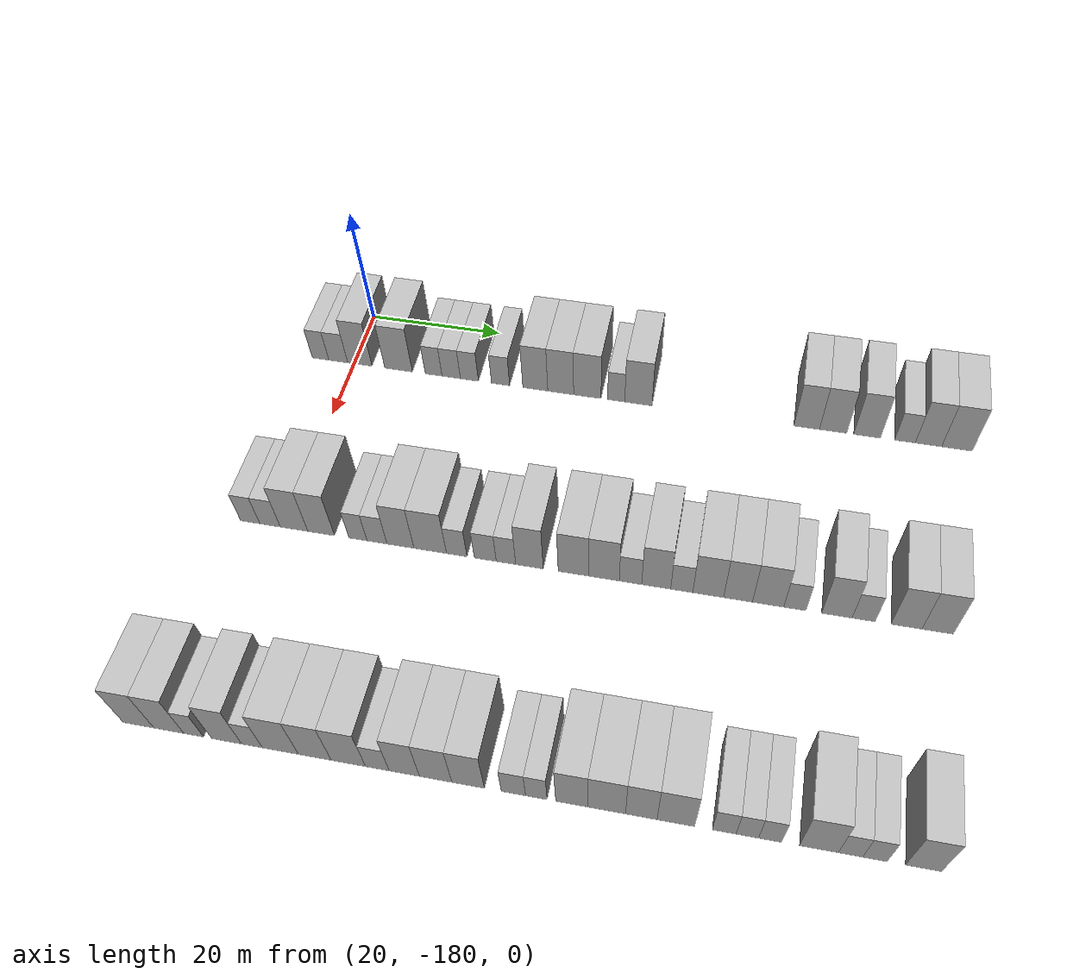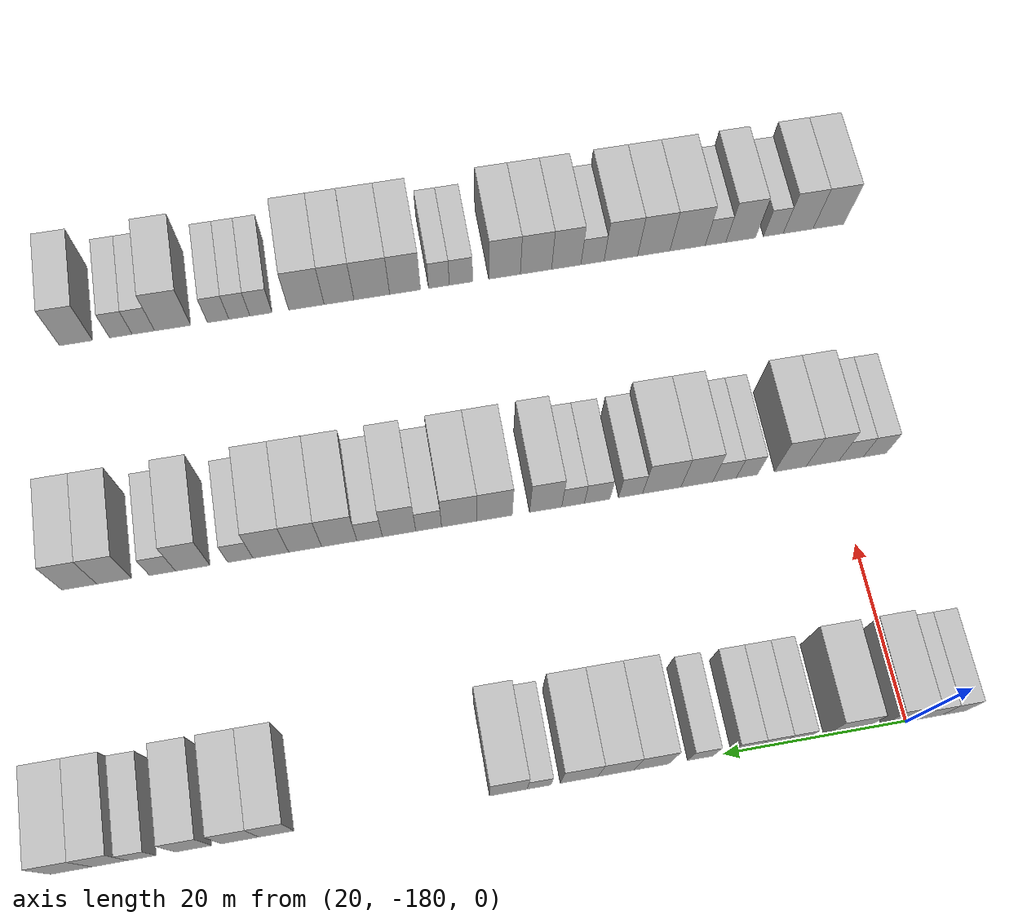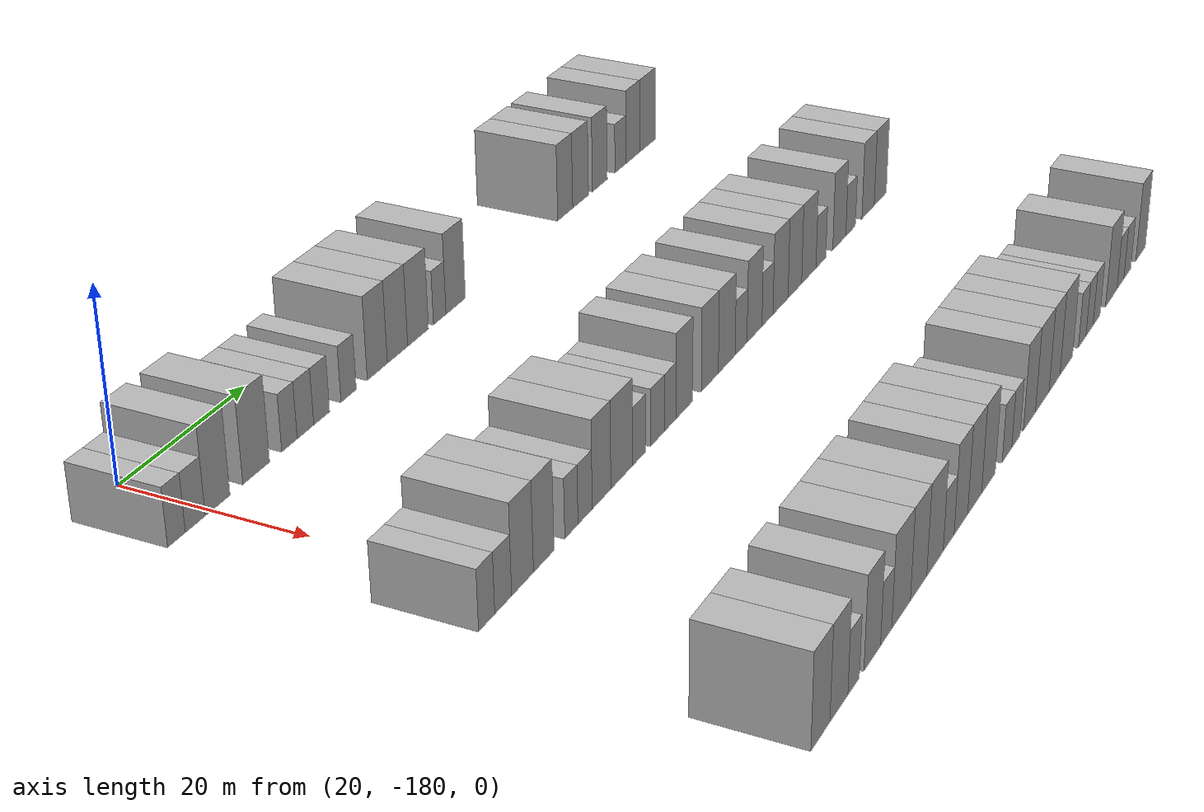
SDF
<sdf version="1.6">
 <world name="default">
  <model name="building_22">
   <static>1</static>
   <pose>25.0000 -185.2902 0 0.000000 0.000000 0.000000</pose>
   <link name="link">
    <pose>0 0 3.00 0 0 0</pose>
    <collision name="collision"><geometry><box><size>10.0000 2.6028 6.0000</size></box></geometry></collision>
    <visual name="visual">
     <cast_shadows>0</cast_shadows>
     <geometry><box><size>10.0000 2.6028 6.0000</size></box></geometry>
     <material>
      <script>
       <uri>model://HANNAS_wall/materials/scripts</uri>
       <uri>model://HANNAS_wall/materials/textures</uri>
       <name>vrc/HANNAS_wall</name>
      </script>
     </material>
    </visual>
   </link>
  </model>
  <model name="building_23">
   <static>1</static>
   <pose>25.0000 -182.5065 0 0.000000 0.000000 0.000000</pose>
   <link name="link">
    <pose>0 0 3.00 0 0 0</pose>
    <collision name="collision"><geometry><box><size>10.0000 2.9645 6.0000</size></box></geometry></collision>
    <visual name="visual">
     <cast_shadows>0</cast_shadows>
     <geometry><box><size>10.0000 2.9645 6.0000</size></box></geometry>
     <material>
      <script>
       <uri>model://HANNAS_wall/materials/scripts</uri>
       <uri>model://HANNAS_wall/materials/textures</uri>
       <name>vrc/HANNAS_wall</name>
      </script>
     </material>
    </visual>
   </link>
  </model>
  <model name="building_24">
   <static>1</static>
   <pose>25.0000 -179.1272 0 0.000000 0.000000 0.000000</pose>
   <link name="link">
    <pose>0 0 4.50 0 0 0</pose>
    <collision name="collision"><geometry><box><size>10.0000 3.7940 9.0000</size></box></geometry></collision>
    <visual name="visual">
     <cast_shadows>0</cast_shadows>
     <geometry><box><size>10.0000 3.7940 9.0000</size></box></geometry>
     <material>
      <script>
       <uri>model://HANNAS_wall/materials/scripts</uri>
       <uri>model://HANNAS_wall/materials/textures</uri>
       <name>vrc/HANNAS_wall</name>
      </script>
     </material>
    </visual>
   </link>
  </model>
  <model name="building_25">
   <static>1</static>
   <pose>25.0000 -173.0870 0 0.000000 0.000000 0.000000</pose>
   <link name="link">
    <pose>0 0 4.50 0 0 0</pose>
    <collision name="collision"><geometry><box><size>10.0000 4.2864 9.0000</size></box></geometry></collision>
    <visual name="visual">
     <cast_shadows>0</cast_shadows>
     <geometry><box><size>10.0000 4.2864 9.0000</size></box></geometry>
     <material>
      <script>
       <uri>model://HANNAS_wall/materials/scripts</uri>
       <uri>model://HANNAS_wall/materials/textures</uri>
       <name>vrc/HANNAS_wall</name>
      </script>
     </material>
    </visual>
   </link>
  </model>
  <model name="building_26">
   <static>1</static>
   <pose>25.0000 -167.6536 0 0.000000 0.000000 0.000000</pose>
   <link name="link">
    <pose>0 0 3.00 0 0 0</pose>
    <collision name="collision"><geometry><box><size>10.0000 2.5802 6.0000</size></box></geometry></collision>
    <visual name="visual">
     <cast_shadows>0</cast_shadows>
     <geometry><box><size>10.0000 2.5802 6.0000</size></box></geometry>
     <material>
      <script>
       <uri>model://HANNAS_wall/materials/scripts</uri>
       <uri>model://HANNAS_wall/materials/textures</uri>
       <name>vrc/HANNAS_wall</name>
      </script>
     </material>
    </visual>
   </link>
  </model>
  <model name="building_27">
   <static>1</static>
   <pose>25.0000 -164.9563 0 0.000000 0.000000 0.000000</pose>
   <link name="link">
    <pose>0 0 3.00 0 0 0</pose>
    <collision name="collision"><geometry><box><size>10.0000 2.8145 6.0000</size></box></geometry></collision>
    <visual name="visual">
     <cast_shadows>0</cast_shadows>
     <geometry><box><size>10.0000 2.8145 6.0000</size></box></geometry>
     <material>
      <script>
       <uri>model://HANNAS_wall/materials/scripts</uri>
       <uri>model://HANNAS_wall/materials/textures</uri>
       <name>vrc/HANNAS_wall</name>
      </script>
     </material>
    </visual>
   </link>
  </model>
  <model name="building_28">
   <static>1</static>
   <pose>25.0000 -162.1720 0 0.000000 0.000000 0.000000</pose>
   <link name="link">
    <pose>0 0 3.00 0 0 0</pose>
    <collision name="collision"><geometry><box><size>10.0000 2.7541 6.0000</size></box></geometry></collision>
    <visual name="visual">
     <cast_shadows>0</cast_shadows>
     <geometry><box><size>10.0000 2.7541 6.0000</size></box></geometry>
     <material>
      <script>
       <uri>model://HANNAS_wall/materials/scripts</uri>
       <uri>model://HANNAS_wall/materials/textures</uri>
       <name>vrc/HANNAS_wall</name>
      </script>
     </material>
    </visual>
   </link>
  </model>
  <model name="building_29">
   <static>1</static>
   <pose>25.0000 -157.4146 0 0.000000 0.000000 0.000000</pose>
   <link name="link">
    <pose>0 0 3.00 0 0 0</pose>
    <collision name="collision"><geometry><box><size>10.0000 2.7607 6.0000</size></box></geometry></collision>
    <visual name="visual">
     <cast_shadows>0</cast_shadows>
     <geometry><box><size>10.0000 2.7607 6.0000</size></box></geometry>
     <material>
      <script>
       <uri>model://HANNAS_wall/materials/scripts</uri>
       <uri>model://HANNAS_wall/materials/textures</uri>
       <name>vrc/HANNAS_wall</name>
      </script>
     </material>
    </visual>
   </link>
  </model>
  <model name="building_30">
   <static>1</static>
   <pose>25.0000 -152.1574 0 0.000000 0.000000 0.000000</pose>
   <link name="link">
    <pose>0 0 4.50 0 0 0</pose>
    <collision name="collision"><geometry><box><size>10.0000 3.7537 9.0000</size></box></geometry></collision>
    <visual name="visual">
     <cast_shadows>0</cast_shadows>
     <geometry><box><size>10.0000 3.7537 9.0000</size></box></geometry>
     <material>
      <script>
       <uri>model://HANNAS_wall/materials/scripts</uri>
       <uri>model://HANNAS_wall/materials/textures</uri>
       <name>vrc/HANNAS_wall</name>
      </script>
     </material>
    </visual>
   </link>
  </model>
  <model name="building_31">
   <static>1</static>
   <pose>25.0000 -148.3324 0 0.000000 0.000000 0.000000</pose>
   <link name="link">
    <pose>0 0 4.50 0 0 0</pose>
    <collision name="collision"><geometry><box><size>10.0000 3.8961 9.0000</size></box></geometry></collision>
    <visual name="visual">
     <cast_shadows>0</cast_shadows>
     <geometry><box><size>10.0000 3.8961 9.0000</size></box></geometry>
     <material>
      <script>
       <uri>model://HANNAS_wall/materials/scripts</uri>
       <uri>model://HANNAS_wall/materials/textures</uri>
       <name>vrc/HANNAS_wall</name>
      </script>
     </material>
    </visual>
   </link>
  </model>
  <model name="building_32">
   <static>1</static>
   <pose>25.0000 -144.3460 0 0.000000 0.000000 0.000000</pose>
   <link name="link">
    <pose>0 0 4.50 0 0 0</pose>
    <collision name="collision"><geometry><box><size>10.0000 4.0767 9.0000</size></box></geometry></collision>
    <visual name="visual">
     <cast_shadows>0</cast_shadows>
     <geometry><box><size>10.0000 4.0767 9.0000</size></box></geometry>
     <material>
      <script>
       <uri>model://HANNAS_wall/materials/scripts</uri>
       <uri>model://HANNAS_wall/materials/textures</uri>
       <name>vrc/HANNAS_wall</name>
      </script>
     </material>
    </visual>
   </link>
  </model>
  <model name="building_33">
   <static>1</static>
   <pose>25.0000 -140.0438 0 0.000000 0.000000 0.000000</pose>
   <link name="link">
    <pose>0 0 3.00 0 0 0</pose>
    <collision name="collision"><geometry><box><size>10.0000 2.5278 6.0000</size></box></geometry></collision>
    <visual name="visual">
     <cast_shadows>0</cast_shadows>
     <geometry><box><size>10.0000 2.5278 6.0000</size></box></geometry>
     <material>
      <script>
       <uri>model://HANNAS_wall/materials/scripts</uri>
       <uri>model://HANNAS_wall/materials/textures</uri>
       <name>vrc/HANNAS_wall</name>
      </script>
     </material>
    </visual>
   </link>
  </model>
  <model name="building_34">
   <static>1</static>
   <pose>25.0000 -136.7617 0 0.000000 0.000000 0.000000</pose>
   <link name="link">
    <pose>0 0 4.50 0 0 0</pose>
    <collision name="collision"><geometry><box><size>10.0000 4.0363 9.0000</size></box></geometry></collision>
    <visual name="visual">
     <cast_shadows>0</cast_shadows>
     <geometry><box><size>10.0000 4.0363 9.0000</size></box></geometry>
     <material>
      <script>
       <uri>model://HANNAS_wall/materials/scripts</uri>
       <uri>model://HANNAS_wall/materials/textures</uri>
       <name>vrc/HANNAS_wall</name>
      </script>
     </material>
    </visual>
   </link>
  </model>
  <model name="building_35">
   <static>1</static>
   <pose>25.0000 -112.2739 0 0.000000 0.000000 0.000000</pose>
   <link name="link">
    <pose>0 0 4.50 0 0 0</pose>
    <collision name="collision"><geometry><box><size>10.0000 3.6465 9.0000</size></box></geometry></collision>
    <visual name="visual">
     <cast_shadows>0</cast_shadows>
     <geometry><box><size>10.0000 3.6465 9.0000</size></box></geometry>
     <material>
      <script>
       <uri>model://HANNAS_wall/materials/scripts</uri>
       <uri>model://HANNAS_wall/materials/textures</uri>
       <name>vrc/HANNAS_wall</name>
      </script>
     </material>
    </visual>
   </link>
  </model>
  <model name="building_36">
   <static>1</static>
   <pose>25.0000 -108.5048 0 0.000000 0.000000 0.000000</pose>
   <link name="link">
    <pose>0 0 4.50 0 0 0</pose>
    <collision name="collision"><geometry><box><size>10.0000 3.8917 9.0000</size></box></geometry></collision>
    <visual name="visual">
     <cast_shadows>0</cast_shadows>
     <geometry><box><size>10.0000 3.8917 9.0000</size></box></geometry>
     <material>
      <script>
       <uri>model://HANNAS_wall/materials/scripts</uri>
       <uri>model://HANNAS_wall/materials/textures</uri>
       <name>vrc/HANNAS_wall</name>
      </script>
     </material>
    </visual>
   </link>
  </model>
  <model name="building_37">
   <static>1</static>
   <pose>25.0000 -103.6698 0 0.000000 0.000000 0.000000</pose>
   <link name="link">
    <pose>0 0 4.50 0 0 0</pose>
    <collision name="collision"><geometry><box><size>10.0000 3.7782 9.0000</size></box></geometry></collision>
    <visual name="visual">
     <cast_shadows>0</cast_shadows>
     <geometry><box><size>10.0000 3.7782 9.0000</size></box></geometry>
     <material>
      <script>
       <uri>model://HANNAS_wall/materials/scripts</uri>
       <uri>model://HANNAS_wall/materials/textures</uri>
       <name>vrc/HANNAS_wall</name>
      </script>
     </material>
    </visual>
   </link>
  </model>
  <model name="building_38">
   <static>1</static>
   <pose>25.0000 -98.3376 0 0.000000 0.000000 0.000000</pose>
   <link name="link">
    <pose>0 0 3.00 0 0 0</pose>
    <collision name="collision"><geometry><box><size>10.0000 2.8864 6.0000</size></box></geometry></collision>
    <visual name="visual">
     <cast_shadows>0</cast_shadows>
     <geometry><box><size>10.0000 2.8864 6.0000</size></box></geometry>
     <material>
      <script>
       <uri>model://HANNAS_wall/materials/scripts</uri>
       <uri>model://HANNAS_wall/materials/textures</uri>
       <name>vrc/HANNAS_wall</name>
      </script>
     </material>
    </visual>
   </link>
  </model>
  <model name="building_39">
   <static>1</static>
   <pose>25.0000 -95.0456 0 0.000000 0.000000 0.000000</pose>
   <link name="link">
    <pose>0 0 4.50 0 0 0</pose>
    <collision name="collision"><geometry><box><size>10.0000 3.6974 9.0000</size></box></geometry></collision>
    <visual name="visual">
     <cast_shadows>0</cast_shadows>
     <geometry><box><size>10.0000 3.6974 9.0000</size></box></geometry>
     <material>
      <script>
       <uri>model://HANNAS_wall/materials/scripts</uri>
       <uri>model://HANNAS_wall/materials/textures</uri>
       <name>vrc/HANNAS_wall</name>
      </script>
     </material>
    </visual>
   </link>
  </model>
  <model name="building_40">
   <static>1</static>
   <pose>25.0000 -91.0666 0 0.000000 0.000000 0.000000</pose>
   <link name="link">
    <pose>0 0 4.50 0 0 0</pose>
    <collision name="collision"><geometry><box><size>10.0000 4.2606 9.0000</size></box></geometry></collision>
    <visual name="visual">
     <cast_shadows>0</cast_shadows>
     <geometry><box><size>10.0000 4.2606 9.0000</size></box></geometry>
     <material>
      <script>
       <uri>model://HANNAS_wall/materials/scripts</uri>
       <uri>model://HANNAS_wall/materials/textures</uri>
       <name>vrc/HANNAS_wall</name>
      </script>
     </material>
    </visual>
   </link>
  </model>
  <model name="building_153">
   <static>1</static>
   <pose>55.0000 -185.0260 0 0.000000 0.000000 0.000000</pose>
   <link name="link">
    <pose>0 0 3.00 0 0 0</pose>
    <collision name="collision"><geometry><box><size>10.0000 2.7230 6.0000</size></box></geometry></collision>
    <visual name="visual">
     <cast_shadows>0</cast_shadows>
     <geometry><box><size>10.0000 2.7230 6.0000</size></box></geometry>
     <material>
      <script>
       <uri>model://HANNAS_wall/materials/scripts</uri>
       <uri>model://HANNAS_wall/materials/textures</uri>
       <name>vrc/HANNAS_wall</name>
      </script>
     </material>
    </visual>
   </link>
  </model>
  <model name="building_154">
   <static>1</static>
   <pose>55.0000 -182.2113 0 0.000000 0.000000 0.000000</pose>
   <link name="link">
    <pose>0 0 3.00 0 0 0</pose>
    <collision name="collision"><geometry><box><size>10.0000 2.9064 6.0000</size></box></geometry></collision>
    <visual name="visual">
     <cast_shadows>0</cast_shadows>
     <geometry><box><size>10.0000 2.9064 6.0000</size></box></geometry>
     <material>
      <script>
       <uri>model://HANNAS_wall/materials/scripts</uri>
       <uri>model://HANNAS_wall/materials/textures</uri>
       <name>vrc/HANNAS_wall</name>
      </script>
     </material>
    </visual>
   </link>
  </model>
  <model name="building_155">
   <static>1</static>
   <pose>55.0000 -178.8246 0 0.000000 0.000000 0.000000</pose>
   <link name="link">
    <pose>0 0 4.50 0 0 0</pose>
    <collision name="collision"><geometry><box><size>10.0000 3.8669 9.0000</size></box></geometry></collision>
    <visual name="visual">
     <cast_shadows>0</cast_shadows>
     <geometry><box><size>10.0000 3.8669 9.0000</size></box></geometry>
     <material>
      <script>
       <uri>model://HANNAS_wall/materials/scripts</uri>
       <uri>model://HANNAS_wall/materials/textures</uri>
       <name>vrc/HANNAS_wall</name>
      </script>
     </material>
    </visual>
   </link>
  </model>
  <model name="building_156">
   <static>1</static>
   <pose>55.0000 -175.0192 0 0.000000 0.000000 0.000000</pose>
   <link name="link">
    <pose>0 0 4.50 0 0 0</pose>
    <collision name="collision"><geometry><box><size>10.0000 3.7440 9.0000</size></box></geometry></collision>
    <visual name="visual">
     <cast_shadows>0</cast_shadows>
     <geometry><box><size>10.0000 3.7440 9.0000</size></box></geometry>
     <material>
      <script>
       <uri>model://HANNAS_wall/materials/scripts</uri>
       <uri>model://HANNAS_wall/materials/textures</uri>
       <name>vrc/HANNAS_wall</name>
      </script>
     </material>
    </visual>
   </link>
  </model>
  <model name="building_157">
   <static>1</static>
   <pose>55.0000 -169.8911 0 0.000000 0.000000 0.000000</pose>
   <link name="link">
    <pose>0 0 3.00 0 0 0</pose>
    <collision name="collision"><geometry><box><size>10.0000 2.5122 6.0000</size></box></geometry></collision>
    <visual name="visual">
     <cast_shadows>0</cast_shadows>
     <geometry><box><size>10.0000 2.5122 6.0000</size></box></geometry>
     <material>
      <script>
       <uri>model://HANNAS_wall/materials/scripts</uri>
       <uri>model://HANNAS_wall/materials/textures</uri>
       <name>vrc/HANNAS_wall</name>
      </script>
     </material>
    </visual>
   </link>
  </model>
  <model name="building_158">
   <static>1</static>
   <pose>55.0000 -167.2529 0 0.000000 0.000000 0.000000</pose>
   <link name="link">
    <pose>0 0 3.00 0 0 0</pose>
    <collision name="collision"><geometry><box><size>10.0000 2.7641 6.0000</size></box></geometry></collision>
    <visual name="visual">
     <cast_shadows>0</cast_shadows>
     <geometry><box><size>10.0000 2.7641 6.0000</size></box></geometry>
     <material>
      <script>
       <uri>model://HANNAS_wall/materials/scripts</uri>
       <uri>model://HANNAS_wall/materials/textures</uri>
       <name>vrc/HANNAS_wall</name>
      </script>
     </material>
    </visual>
   </link>
  </model>
  <model name="building_159">
   <static>1</static>
   <pose>55.0000 -164.0190 0 0.000000 0.000000 0.000000</pose>
   <link name="link">
    <pose>0 0 4.50 0 0 0</pose>
    <collision name="collision"><geometry><box><size>10.0000 3.7036 9.0000</size></box></geometry></collision>
    <visual name="visual">
     <cast_shadows>0</cast_shadows>
     <geometry><box><size>10.0000 3.7036 9.0000</size></box></geometry>
     <material>
      <script>
       <uri>model://HANNAS_wall/materials/scripts</uri>
       <uri>model://HANNAS_wall/materials/textures</uri>
       <name>vrc/HANNAS_wall</name>
      </script>
     </material>
    </visual>
   </link>
  </model>
  <model name="building_160">
   <static>1</static>
   <pose>55.0000 -159.9328 0 0.000000 0.000000 0.000000</pose>
   <link name="link">
    <pose>0 0 4.50 0 0 0</pose>
    <collision name="collision"><geometry><box><size>10.0000 4.4688 9.0000</size></box></geometry></collision>
    <visual name="visual">
     <cast_shadows>0</cast_shadows>
     <geometry><box><size>10.0000 4.4688 9.0000</size></box></geometry>
     <material>
      <script>
       <uri>model://HANNAS_wall/materials/scripts</uri>
       <uri>model://HANNAS_wall/materials/textures</uri>
       <name>vrc/HANNAS_wall</name>
      </script>
     </material>
    </visual>
   </link>
  </model>
  <model name="building_161">
   <static>1</static>
   <pose>55.0000 -156.3038 0 0.000000 0.000000 0.000000</pose>
   <link name="link">
    <pose>0 0 3.00 0 0 0</pose>
    <collision name="collision"><geometry><box><size>10.0000 2.7891 6.0000</size></box></geometry></collision>
    <visual name="visual">
     <cast_shadows>0</cast_shadows>
     <geometry><box><size>10.0000 2.7891 6.0000</size></box></geometry>
     <material>
      <script>
       <uri>model://HANNAS_wall/materials/scripts</uri>
       <uri>model://HANNAS_wall/materials/textures</uri>
       <name>vrc/HANNAS_wall</name>
      </script>
     </material>
    </visual>
   </link>
  </model>
  <model name="building_162">
   <static>1</static>
   <pose>55.0000 -152.4334 0 0.000000 0.000000 0.000000</pose>
   <link name="link">
    <pose>0 0 3.00 0 0 0</pose>
    <collision name="collision"><geometry><box><size>10.0000 2.9518 6.0000</size></box></geometry></collision>
    <visual name="visual">
     <cast_shadows>0</cast_shadows>
     <geometry><box><size>10.0000 2.9518 6.0000</size></box></geometry>
     <material>
      <script>
       <uri>model://HANNAS_wall/materials/scripts</uri>
       <uri>model://HANNAS_wall/materials/textures</uri>
       <name>vrc/HANNAS_wall</name>
      </script>
     </material>
    </visual>
   </link>
  </model>
  <model name="building_163">
   <static>1</static>
   <pose>55.0000 -149.6436 0 0.000000 0.000000 0.000000</pose>
   <link name="link">
    <pose>0 0 3.00 0 0 0</pose>
    <collision name="collision"><geometry><box><size>10.0000 2.6277 6.0000</size></box></geometry></collision>
    <visual name="visual">
     <cast_shadows>0</cast_shadows>
     <geometry><box><size>10.0000 2.6277 6.0000</size></box></geometry>
     <material>
      <script>
       <uri>model://HANNAS_wall/materials/scripts</uri>
       <uri>model://HANNAS_wall/materials/textures</uri>
       <name>vrc/HANNAS_wall</name>
      </script>
     </material>
    </visual>
   </link>
  </model>
  <model name="building_164">
   <static>1</static>
   <pose>55.0000 -146.4800 0 0.000000 0.000000 0.000000</pose>
   <link name="link">
    <pose>0 0 4.50 0 0 0</pose>
    <collision name="collision"><geometry><box><size>10.0000 3.6996 9.0000</size></box></geometry></collision>
    <visual name="visual">
     <cast_shadows>0</cast_shadows>
     <geometry><box><size>10.0000 3.6996 9.0000</size></box></geometry>
     <material>
      <script>
       <uri>model://HANNAS_wall/materials/scripts</uri>
       <uri>model://HANNAS_wall/materials/textures</uri>
       <name>vrc/HANNAS_wall</name>
      </script>
     </material>
    </visual>
   </link>
  </model>
  <model name="building_165">
   <static>1</static>
   <pose>55.0000 -140.6184 0 0.000000 0.000000 0.000000</pose>
   <link name="link">
    <pose>0 0 4.50 0 0 0</pose>
    <collision name="collision"><geometry><box><size>10.0000 4.0236 9.0000</size></box></geometry></collision>
    <visual name="visual">
     <cast_shadows>0</cast_shadows>
     <geometry><box><size>10.0000 4.0236 9.0000</size></box></geometry>
     <material>
      <script>
       <uri>model://HANNAS_wall/materials/scripts</uri>
       <uri>model://HANNAS_wall/materials/textures</uri>
       <name>vrc/HANNAS_wall</name>
      </script>
     </material>
    </visual>
   </link>
  </model>
  <model name="building_166">
   <static>1</static>
   <pose>55.0000 -136.5712 0 0.000000 0.000000 0.000000</pose>
   <link name="link">
    <pose>0 0 4.50 0 0 0</pose>
    <collision name="collision"><geometry><box><size>10.0000 4.0707 9.0000</size></box></geometry></collision>
    <visual name="visual">
     <cast_shadows>0</cast_shadows>
     <geometry><box><size>10.0000 4.0707 9.0000</size></box></geometry>
     <material>
      <script>
       <uri>model://HANNAS_wall/materials/scripts</uri>
       <uri>model://HANNAS_wall/materials/textures</uri>
       <name>vrc/HANNAS_wall</name>
      </script>
     </material>
    </visual>
   </link>
  </model>
  <model name="building_167">
   <static>1</static>
   <pose>55.0000 -133.0677 0 0.000000 0.000000 0.000000</pose>
   <link name="link">
    <pose>0 0 3.00 0 0 0</pose>
    <collision name="collision"><geometry><box><size>10.0000 2.9363 6.0000</size></box></geometry></collision>
    <visual name="visual">
     <cast_shadows>0</cast_shadows>
     <geometry><box><size>10.0000 2.9363 6.0000</size></box></geometry>
     <material>
      <script>
       <uri>model://HANNAS_wall/materials/scripts</uri>
       <uri>model://HANNAS_wall/materials/textures</uri>
       <name>vrc/HANNAS_wall</name>
      </script>
     </material>
    </visual>
   </link>
  </model>
  <model name="building_168">
   <static>1</static>
   <pose>55.0000 -129.7004 0 0.000000 0.000000 0.000000</pose>
   <link name="link">
    <pose>0 0 4.50 0 0 0</pose>
    <collision name="collision"><geometry><box><size>10.0000 3.7983 9.0000</size></box></geometry></collision>
    <visual name="visual">
     <cast_shadows>0</cast_shadows>
     <geometry><box><size>10.0000 3.7983 9.0000</size></box></geometry>
     <material>
      <script>
       <uri>model://HANNAS_wall/materials/scripts</uri>
       <uri>model://HANNAS_wall/materials/textures</uri>
       <name>vrc/HANNAS_wall</name>
      </script>
     </material>
    </visual>
   </link>
  </model>
  <model name="building_169">
   <static>1</static>
   <pose>55.0000 -126.3628 0 0.000000 0.000000 0.000000</pose>
   <link name="link">
    <pose>0 0 3.00 0 0 0</pose>
    <collision name="collision"><geometry><box><size>10.0000 2.8771 6.0000</size></box></geometry></collision>
    <visual name="visual">
     <cast_shadows>0</cast_shadows>
     <geometry><box><size>10.0000 2.8771 6.0000</size></box></geometry>
     <material>
      <script>
       <uri>model://HANNAS_wall/materials/scripts</uri>
       <uri>model://HANNAS_wall/materials/textures</uri>
       <name>vrc/HANNAS_wall</name>
      </script>
     </material>
    </visual>
   </link>
  </model>
  <model name="building_170">
   <static>1</static>
   <pose>55.0000 -122.9276 0 0.000000 0.000000 0.000000</pose>
   <link name="link">
    <pose>0 0 4.50 0 0 0</pose>
    <collision name="collision"><geometry><box><size>10.0000 3.9932 9.0000</size></box></geometry></collision>
    <visual name="visual">
     <cast_shadows>0</cast_shadows>
     <geometry><box><size>10.0000 3.9932 9.0000</size></box></geometry>
     <material>
      <script>
       <uri>model://HANNAS_wall/materials/scripts</uri>
       <uri>model://HANNAS_wall/materials/textures</uri>
       <name>vrc/HANNAS_wall</name>
      </script>
     </material>
    </visual>
   </link>
  </model>
  <model name="building_171">
   <static>1</static>
   <pose>55.0000 -119.0752 0 0.000000 0.000000 0.000000</pose>
   <link name="link">
    <pose>0 0 4.50 0 0 0</pose>
    <collision name="collision"><geometry><box><size>10.0000 3.7115 9.0000</size></box></geometry></collision>
    <visual name="visual">
     <cast_shadows>0</cast_shadows>
     <geometry><box><size>10.0000 3.7115 9.0000</size></box></geometry>
     <material>
      <script>
       <uri>model://HANNAS_wall/materials/scripts</uri>
       <uri>model://HANNAS_wall/materials/textures</uri>
       <name>vrc/HANNAS_wall</name>
      </script>
     </material>
    </visual>
   </link>
  </model>
  <model name="building_172">
   <static>1</static>
   <pose>55.0000 -115.2113 0 0.000000 0.000000 0.000000</pose>
   <link name="link">
    <pose>0 0 4.50 0 0 0</pose>
    <collision name="collision"><geometry><box><size>10.0000 4.0164 9.0000</size></box></geometry></collision>
    <visual name="visual">
     <cast_shadows>0</cast_shadows>
     <geometry><box><size>10.0000 4.0164 9.0000</size></box></geometry>
     <material>
      <script>
       <uri>model://HANNAS_wall/materials/scripts</uri>
       <uri>model://HANNAS_wall/materials/textures</uri>
       <name>vrc/HANNAS_wall</name>
      </script>
     </material>
    </visual>
   </link>
  </model>
  <model name="building_173">
   <static>1</static>
   <pose>55.0000 -111.7916 0 0.000000 0.000000 0.000000</pose>
   <link name="link">
    <pose>0 0 3.00 0 0 0</pose>
    <collision name="collision"><geometry><box><size>10.0000 2.8229 6.0000</size></box></geometry></collision>
    <visual name="visual">
     <cast_shadows>0</cast_shadows>
     <geometry><box><size>10.0000 2.8229 6.0000</size></box></geometry>
     <material>
      <script>
       <uri>model://HANNAS_wall/materials/scripts</uri>
       <uri>model://HANNAS_wall/materials/textures</uri>
       <name>vrc/HANNAS_wall</name>
      </script>
     </material>
    </visual>
   </link>
  </model>
  <model name="building_174">
   <static>1</static>
   <pose>55.0000 -106.4571 0 0.000000 0.000000 0.000000</pose>
   <link name="link">
    <pose>0 0 4.50 0 0 0</pose>
    <collision name="collision"><geometry><box><size>10.0000 3.8460 9.0000</size></box></geometry></collision>
    <visual name="visual">
     <cast_shadows>0</cast_shadows>
     <geometry><box><size>10.0000 3.8460 9.0000</size></box></geometry>
     <material>
      <script>
       <uri>model://HANNAS_wall/materials/scripts</uri>
       <uri>model://HANNAS_wall/materials/textures</uri>
       <name>vrc/HANNAS_wall</name>
      </script>
     </material>
    </visual>
   </link>
  </model>
  <model name="building_175">
   <static>1</static>
   <pose>55.0000 -103.0831 0 0.000000 0.000000 0.000000</pose>
   <link name="link">
    <pose>0 0 3.00 0 0 0</pose>
    <collision name="collision"><geometry><box><size>10.0000 2.9020 6.0000</size></box></geometry></collision>
    <visual name="visual">
     <cast_shadows>0</cast_shadows>
     <geometry><box><size>10.0000 2.9020 6.0000</size></box></geometry>
     <material>
      <script>
       <uri>model://HANNAS_wall/materials/scripts</uri>
       <uri>model://HANNAS_wall/materials/textures</uri>
       <name>vrc/HANNAS_wall</name>
      </script>
     </material>
    </visual>
   </link>
  </model>
  <model name="building_176">
   <static>1</static>
   <pose>55.0000 -97.7161 0 0.000000 0.000000 0.000000</pose>
   <link name="link">
    <pose>0 0 4.50 0 0 0</pose>
    <collision name="collision"><geometry><box><size>10.0000 3.8321 9.0000</size></box></geometry></collision>
    <visual name="visual">
     <cast_shadows>0</cast_shadows>
     <geometry><box><size>10.0000 3.8321 9.0000</size></box></geometry>
     <material>
      <script>
       <uri>model://HANNAS_wall/materials/scripts</uri>
       <uri>model://HANNAS_wall/materials/textures</uri>
       <name>vrc/HANNAS_wall</name>
      </script>
     </material>
    </visual>
   </link>
  </model>
  <model name="building_177">
   <static>1</static>
   <pose>55.0000 -93.8595 0 0.000000 0.000000 0.000000</pose>
   <link name="link">
    <pose>0 0 4.50 0 0 0</pose>
    <collision name="collision"><geometry><box><size>10.0000 3.8812 9.0000</size></box></geometry></collision>
    <visual name="visual">
     <cast_shadows>0</cast_shadows>
     <geometry><box><size>10.0000 3.8812 9.0000</size></box></geometry>
     <material>
      <script>
       <uri>model://HANNAS_wall/materials/scripts</uri>
       <uri>model://HANNAS_wall/materials/textures</uri>
       <name>vrc/HANNAS_wall</name>
      </script>
     </material>
    </visual>
   </link>
  </model>
  <model name="building_292">
   <static>1</static>
   <pose>85.0000 -187.6111 0 0.000000 0.000000 0.000000</pose>
   <link name="link">
    <pose>0 0 4.50 0 0 0</pose>
    <collision name="collision"><geometry><box><size>10.0000 3.8960 9.0000</size></box></geometry></collision>
    <visual name="visual">
     <cast_shadows>0</cast_shadows>
     <geometry><box><size>10.0000 3.8960 9.0000</size></box></geometry>
     <material>
      <script>
       <uri>model://HANNAS_wall/materials/scripts</uri>
       <uri>model://HANNAS_wall/materials/textures</uri>
       <name>vrc/HANNAS_wall</name>
      </script>
     </material>
    </visual>
   </link>
  </model>
  <model name="building_293">
   <static>1</static>
   <pose>85.0000 -183.7734 0 0.000000 0.000000 0.000000</pose>
   <link name="link">
    <pose>0 0 4.50 0 0 0</pose>
    <collision name="collision"><geometry><box><size>10.0000 3.7795 9.0000</size></box></geometry></collision>
    <visual name="visual">
     <cast_shadows>0</cast_shadows>
     <geometry><box><size>10.0000 3.7795 9.0000</size></box></geometry>
     <material>
      <script>
       <uri>model://HANNAS_wall/materials/scripts</uri>
       <uri>model://HANNAS_wall/materials/textures</uri>
       <name>vrc/HANNAS_wall</name>
      </script>
     </material>
    </visual>
   </link>
  </model>
  <model name="building_294">
   <static>1</static>
   <pose>85.0000 -180.6366 0 0.000000 0.000000 0.000000</pose>
   <link name="link">
    <pose>0 0 3.00 0 0 0</pose>
    <collision name="collision"><geometry><box><size>10.0000 2.4941 6.0000</size></box></geometry></collision>
    <visual name="visual">
     <cast_shadows>0</cast_shadows>
     <geometry><box><size>10.0000 2.4941 6.0000</size></box></geometry>
     <material>
      <script>
       <uri>model://HANNAS_wall/materials/scripts</uri>
       <uri>model://HANNAS_wall/materials/textures</uri>
       <name>vrc/HANNAS_wall</name>
      </script>
     </material>
    </visual>
   </link>
  </model>
  <model name="building_295">
   <static>1</static>
   <pose>85.0000 -176.5212 0 0.000000 0.000000 0.000000</pose>
   <link name="link">
    <pose>0 0 4.50 0 0 0</pose>
    <collision name="collision"><geometry><box><size>10.0000 3.7368 9.0000</size></box></geometry></collision>
    <visual name="visual">
     <cast_shadows>0</cast_shadows>
     <geometry><box><size>10.0000 3.7368 9.0000</size></box></geometry>
     <material>
      <script>
       <uri>model://HANNAS_wall/materials/scripts</uri>
       <uri>model://HANNAS_wall/materials/textures</uri>
       <name>vrc/HANNAS_wall</name>
      </script>
     </material>
    </visual>
   </link>
  </model>
  <model name="building_296">
   <static>1</static>
   <pose>85.0000 -173.3648 0 0.000000 0.000000 0.000000</pose>
   <link name="link">
    <pose>0 0 3.00 0 0 0</pose>
    <collision name="collision"><geometry><box><size>10.0000 2.5761 6.0000</size></box></geometry></collision>
    <visual name="visual">
     <cast_shadows>0</cast_shadows>
     <geometry><box><size>10.0000 2.5761 6.0000</size></box></geometry>
     <material>
      <script>
       <uri>model://HANNAS_wall/materials/scripts</uri>
       <uri>model://HANNAS_wall/materials/textures</uri>
       <name>vrc/HANNAS_wall</name>
      </script>
     </material>
    </visual>
   </link>
  </model>
  <model name="building_297">
   <static>1</static>
   <pose>85.0000 -169.8605 0 0.000000 0.000000 0.000000</pose>
   <link name="link">
    <pose>0 0 4.50 0 0 0</pose>
    <collision name="collision"><geometry><box><size>10.0000 4.4325 9.0000</size></box></geometry></collision>
    <visual name="visual">
     <cast_shadows>0</cast_shadows>
     <geometry><box><size>10.0000 4.4325 9.0000</size></box></geometry>
     <material>
      <script>
       <uri>model://HANNAS_wall/materials/scripts</uri>
       <uri>model://HANNAS_wall/materials/textures</uri>
       <name>vrc/HANNAS_wall</name>
      </script>
     </material>
    </visual>
   </link>
  </model>
  <model name="building_298">
   <static>1</static>
   <pose>85.0000 -165.6308 0 0.000000 0.000000 0.000000</pose>
   <link name="link">
    <pose>0 0 4.50 0 0 0</pose>
    <collision name="collision"><geometry><box><size>10.0000 4.0267 9.0000</size></box></geometry></collision>
    <visual name="visual">
     <cast_shadows>0</cast_shadows>
     <geometry><box><size>10.0000 4.0267 9.0000</size></box></geometry>
     <material>
      <script>
       <uri>model://HANNAS_wall/materials/scripts</uri>
       <uri>model://HANNAS_wall/materials/textures</uri>
       <name>vrc/HANNAS_wall</name>
      </script>
     </material>
    </visual>
   </link>
  </model>
  <model name="building_299">
   <static>1</static>
   <pose>85.0000 -161.5288 0 0.000000 0.000000 0.000000</pose>
   <link name="link">
    <pose>0 0 4.50 0 0 0</pose>
    <collision name="collision"><geometry><box><size>10.0000 4.1773 9.0000</size></box></geometry></collision>
    <visual name="visual">
     <cast_shadows>0</cast_shadows>
     <geometry><box><size>10.0000 4.1773 9.0000</size></box></geometry>
     <material>
      <script>
       <uri>model://HANNAS_wall/materials/scripts</uri>
       <uri>model://HANNAS_wall/materials/textures</uri>
       <name>vrc/HANNAS_wall</name>
      </script>
     </material>
    </visual>
   </link>
  </model>
  <model name="building_300">
   <static>1</static>
   <pose>85.0000 -158.0082 0 0.000000 0.000000 0.000000</pose>
   <link name="link">
    <pose>0 0 3.00 0 0 0</pose>
    <collision name="collision"><geometry><box><size>10.0000 2.8640 6.0000</size></box></geometry></collision>
    <visual name="visual">
     <cast_shadows>0</cast_shadows>
     <geometry><box><size>10.0000 2.8640 6.0000</size></box></geometry>
     <material>
      <script>
       <uri>model://HANNAS_wall/materials/scripts</uri>
       <uri>model://HANNAS_wall/materials/textures</uri>
       <name>vrc/HANNAS_wall</name>
      </script>
     </material>
    </visual>
   </link>
  </model>
  <model name="building_301">
   <static>1</static>
   <pose>85.0000 -154.7605 0 0.000000 0.000000 0.000000</pose>
   <link name="link">
    <pose>0 0 4.50 0 0 0</pose>
    <collision name="collision"><geometry><box><size>10.0000 3.6315 9.0000</size></box></geometry></collision>
    <visual name="visual">
     <cast_shadows>0</cast_shadows>
     <geometry><box><size>10.0000 3.6315 9.0000</size></box></geometry>
     <material>
      <script>
       <uri>model://HANNAS_wall/materials/scripts</uri>
       <uri>model://HANNAS_wall/materials/textures</uri>
       <name>vrc/HANNAS_wall</name>
      </script>
     </material>
    </visual>
   </link>
  </model>
  <model name="building_302">
   <static>1</static>
   <pose>85.0000 -151.0167 0 0.000000 0.000000 0.000000</pose>
   <link name="link">
    <pose>0 0 4.50 0 0 0</pose>
    <collision name="collision"><geometry><box><size>10.0000 3.8560 9.0000</size></box></geometry></collision>
    <visual name="visual">
     <cast_shadows>0</cast_shadows>
     <geometry><box><size>10.0000 3.8560 9.0000</size></box></geometry>
     <material>
      <script>
       <uri>model://HANNAS_wall/materials/scripts</uri>
       <uri>model://HANNAS_wall/materials/textures</uri>
       <name>vrc/HANNAS_wall</name>
      </script>
     </material>
    </visual>
   </link>
  </model>
  <model name="building_303">
   <static>1</static>
   <pose>85.0000 -147.1509 0 0.000000 0.000000 0.000000</pose>
   <link name="link">
    <pose>0 0 4.50 0 0 0</pose>
    <collision name="collision"><geometry><box><size>10.0000 3.8756 9.0000</size></box></geometry></collision>
    <visual name="visual">
     <cast_shadows>0</cast_shadows>
     <geometry><box><size>10.0000 3.8756 9.0000</size></box></geometry>
     <material>
      <script>
       <uri>model://HANNAS_wall/materials/scripts</uri>
       <uri>model://HANNAS_wall/materials/textures</uri>
       <name>vrc/HANNAS_wall</name>
      </script>
     </material>
    </visual>
   </link>
  </model>
  <model name="building_304">
   <static>1</static>
   <pose>85.0000 -141.7902 0 0.000000 0.000000 0.000000</pose>
   <link name="link">
    <pose>0 0 3.00 0 0 0</pose>
    <collision name="collision"><geometry><box><size>10.0000 2.8459 6.0000</size></box></geometry></collision>
    <visual name="visual">
     <cast_shadows>0</cast_shadows>
     <geometry><box><size>10.0000 2.8459 6.0000</size></box></geometry>
     <material>
      <script>
       <uri>model://HANNAS_wall/materials/scripts</uri>
       <uri>model://HANNAS_wall/materials/textures</uri>
       <name>vrc/HANNAS_wall</name>
      </script>
     </material>
    </visual>
   </link>
  </model>
  <model name="building_305">
   <static>1</static>
   <pose>85.0000 -139.1071 0 0.000000 0.000000 0.000000</pose>
   <link name="link">
    <pose>0 0 3.00 0 0 0</pose>
    <collision name="collision"><geometry><box><size>10.0000 2.5203 6.0000</size></box></geometry></collision>
    <visual name="visual">
     <cast_shadows>0</cast_shadows>
     <geometry><box><size>10.0000 2.5203 6.0000</size></box></geometry>
     <material>
      <script>
       <uri>model://HANNAS_wall/materials/scripts</uri>
       <uri>model://HANNAS_wall/materials/textures</uri>
       <name>vrc/HANNAS_wall</name>
      </script>
     </material>
    </visual>
   </link>
  </model>
  <model name="building_306">
   <static>1</static>
   <pose>85.0000 -134.9718 0 0.000000 0.000000 0.000000</pose>
   <link name="link">
    <pose>0 0 4.50 0 0 0</pose>
    <collision name="collision"><geometry><box><size>10.0000 3.7502 9.0000</size></box></geometry></collision>
    <visual name="visual">
     <cast_shadows>0</cast_shadows>
     <geometry><box><size>10.0000 3.7502 9.0000</size></box></geometry>
     <material>
      <script>
       <uri>model://HANNAS_wall/materials/scripts</uri>
       <uri>model://HANNAS_wall/materials/textures</uri>
       <name>vrc/HANNAS_wall</name>
      </script>
     </material>
    </visual>
   </link>
  </model>
  <model name="building_307">
   <static>1</static>
   <pose>85.0000 -130.9268 0 0.000000 0.000000 0.000000</pose>
   <link name="link">
    <pose>0 0 4.50 0 0 0</pose>
    <collision name="collision"><geometry><box><size>10.0000 4.3399 9.0000</size></box></geometry></collision>
    <visual name="visual">
     <cast_shadows>0</cast_shadows>
     <geometry><box><size>10.0000 4.3399 9.0000</size></box></geometry>
     <material>
      <script>
       <uri>model://HANNAS_wall/materials/scripts</uri>
       <uri>model://HANNAS_wall/materials/textures</uri>
       <name>vrc/HANNAS_wall</name>
      </script>
     </material>
    </visual>
   </link>
  </model>
  <model name="building_308">
   <static>1</static>
   <pose>85.0000 -126.9515 0 0.000000 0.000000 0.000000</pose>
   <link name="link">
    <pose>0 0 4.50 0 0 0</pose>
    <collision name="collision"><geometry><box><size>10.0000 3.6106 9.0000</size></box></geometry></collision>
    <visual name="visual">
     <cast_shadows>0</cast_shadows>
     <geometry><box><size>10.0000 3.6106 9.0000</size></box></geometry>
     <material>
      <script>
       <uri>model://HANNAS_wall/materials/scripts</uri>
       <uri>model://HANNAS_wall/materials/textures</uri>
       <name>vrc/HANNAS_wall</name>
      </script>
     </material>
    </visual>
   </link>
  </model>
  <model name="building_309">
   <static>1</static>
   <pose>85.0000 -123.0052 0 0.000000 0.000000 0.000000</pose>
   <link name="link">
    <pose>0 0 4.50 0 0 0</pose>
    <collision name="collision"><geometry><box><size>10.0000 4.2821 9.0000</size></box></geometry></collision>
    <visual name="visual">
     <cast_shadows>0</cast_shadows>
     <geometry><box><size>10.0000 4.2821 9.0000</size></box></geometry>
     <material>
      <script>
       <uri>model://HANNAS_wall/materials/scripts</uri>
       <uri>model://HANNAS_wall/materials/textures</uri>
       <name>vrc/HANNAS_wall</name>
      </script>
     </material>
    </visual>
   </link>
  </model>
  <model name="building_310">
   <static>1</static>
   <pose>85.0000 -117.5271 0 0.000000 0.000000 0.000000</pose>
   <link name="link">
    <pose>0 0 3.00 0 0 0</pose>
    <collision name="collision"><geometry><box><size>10.0000 2.6740 6.0000</size></box></geometry></collision>
    <visual name="visual">
     <cast_shadows>0</cast_shadows>
     <geometry><box><size>10.0000 2.6740 6.0000</size></box></geometry>
     <material>
      <script>
       <uri>model://HANNAS_wall/materials/scripts</uri>
       <uri>model://HANNAS_wall/materials/textures</uri>
       <name>vrc/HANNAS_wall</name>
      </script>
     </material>
    </visual>
   </link>
  </model>
  <model name="building_311">
   <static>1</static>
   <pose>85.0000 -114.9308 0 0.000000 0.000000 0.000000</pose>
   <link name="link">
    <pose>0 0 3.00 0 0 0</pose>
    <collision name="collision"><geometry><box><size>10.0000 2.5186 6.0000</size></box></geometry></collision>
    <visual name="visual">
     <cast_shadows>0</cast_shadows>
     <geometry><box><size>10.0000 2.5186 6.0000</size></box></geometry>
     <material>
      <script>
       <uri>model://HANNAS_wall/materials/scripts</uri>
       <uri>model://HANNAS_wall/materials/textures</uri>
       <name>vrc/HANNAS_wall</name>
      </script>
     </material>
    </visual>
   </link>
  </model>
  <model name="building_312">
   <static>1</static>
   <pose>85.0000 -112.3830 0 0.000000 0.000000 0.000000</pose>
   <link name="link">
    <pose>0 0 3.00 0 0 0</pose>
    <collision name="collision"><geometry><box><size>10.0000 2.5770 6.0000</size></box></geometry></collision>
    <visual name="visual">
     <cast_shadows>0</cast_shadows>
     <geometry><box><size>10.0000 2.5770 6.0000</size></box></geometry>
     <material>
      <script>
       <uri>model://HANNAS_wall/materials/scripts</uri>
       <uri>model://HANNAS_wall/materials/textures</uri>
       <name>vrc/HANNAS_wall</name>
      </script>
     </material>
    </visual>
   </link>
  </model>
  <model name="building_313">
   <static>1</static>
   <pose>85.0000 -106.9426 0 0.000000 0.000000 0.000000</pose>
   <link name="link">
    <pose>0 0 4.50 0 0 0</pose>
    <collision name="collision"><geometry><box><size>10.0000 4.3037 9.0000</size></box></geometry></collision>
    <visual name="visual">
     <cast_shadows>0</cast_shadows>
     <geometry><box><size>10.0000 4.3037 9.0000</size></box></geometry>
     <material>
      <script>
       <uri>model://HANNAS_wall/materials/scripts</uri>
       <uri>model://HANNAS_wall/materials/textures</uri>
       <name>vrc/HANNAS_wall</name>
      </script>
     </material>
    </visual>
   </link>
  </model>
  <model name="building_314">
   <static>1</static>
   <pose>85.0000 -103.4541 0 0.000000 0.000000 0.000000</pose>
   <link name="link">
    <pose>0 0 3.00 0 0 0</pose>
    <collision name="collision"><geometry><box><size>10.0000 2.6733 6.0000</size></box></geometry></collision>
    <visual name="visual">
     <cast_shadows>0</cast_shadows>
     <geometry><box><size>10.0000 2.6733 6.0000</size></box></geometry>
     <material>
      <script>
       <uri>model://HANNAS_wall/materials/scripts</uri>
       <uri>model://HANNAS_wall/materials/textures</uri>
       <name>vrc/HANNAS_wall</name>
      </script>
     </material>
    </visual>
   </link>
  </model>
  <model name="building_315">
   <static>1</static>
   <pose>85.0000 -100.7681 0 0.000000 0.000000 0.000000</pose>
   <link name="link">
    <pose>0 0 3.00 0 0 0</pose>
    <collision name="collision"><geometry><box><size>10.0000 2.6988 6.0000</size></box></geometry></collision>
    <visual name="visual">
     <cast_shadows>0</cast_shadows>
     <geometry><box><size>10.0000 2.6988 6.0000</size></box></geometry>
     <material>
      <script>
       <uri>model://HANNAS_wall/materials/scripts</uri>
       <uri>model://HANNAS_wall/materials/textures</uri>
       <name>vrc/HANNAS_wall</name>
      </script>
     </material>
    </visual>
   </link>
  </model>
  <model name="building_316">
   <static>1</static>
   <pose>85.0000 -95.4557 0 0.000000 0.000000 0.000000</pose>
   <link name="link">
    <pose>0 0 4.50 0 0 0</pose>
    <collision name="collision"><geometry><box><size>10.0000 3.9259 9.0000</size></box></geometry></collision>
    <visual name="visual">
     <cast_shadows>0</cast_shadows>
     <geometry><box><size>10.0000 3.9259 9.0000</size></box></geometry>
     <material>
      <script>
       <uri>model://HANNAS_wall/materials/scripts</uri>
       <uri>model://HANNAS_wall/materials/textures</uri>
       <name>vrc/HANNAS_wall</name>
      </script>
     </material>
    </visual>
   </link>
  </model>
 </world>
</sdf>
